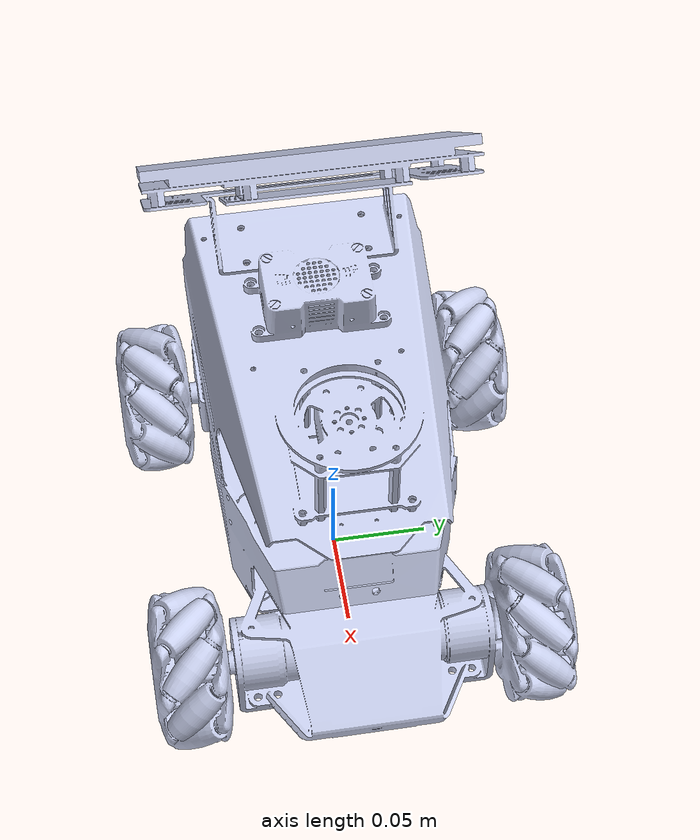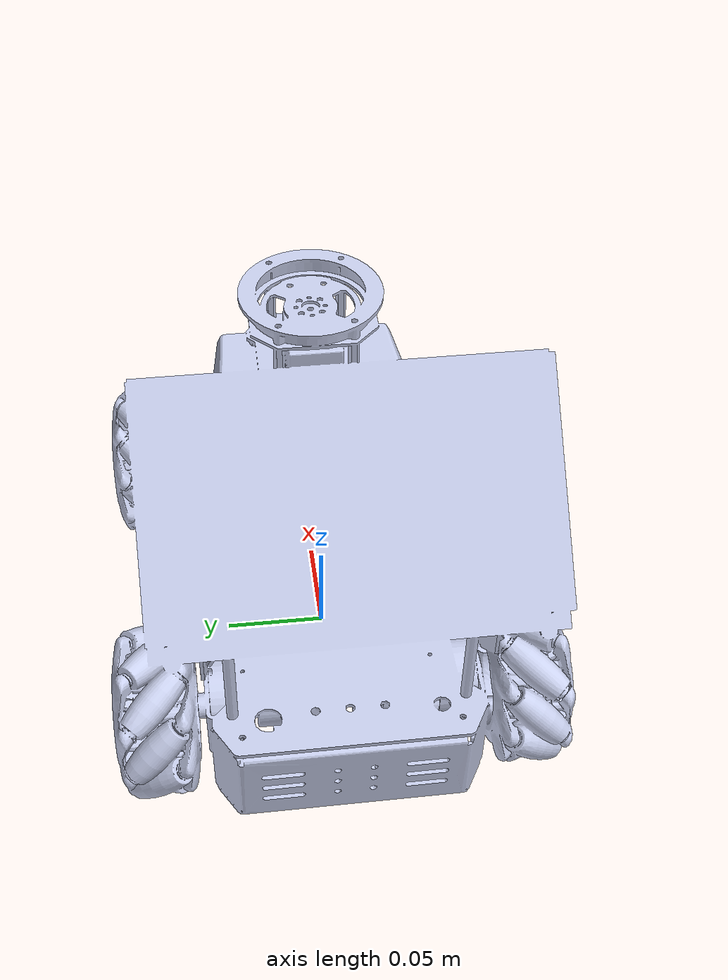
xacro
<?xml version="1.0" encoding="utf-8"?>
<robot name="car" xmlns:xacro="http://ros.org/wiki/xacro" >
  <xacro:arg name="prefix" default="" />
  <xacro:property name="M_PI"               value="3.1415926535897931"/>
  <xacro:property name="base_link_mass"     value="1.6" />
  <xacro:property name="base_link_w"        value="0.30"/>
  <xacro:property name="base_link_h"        value="0.15"/>
  <xacro:property name="base_link_d"        value="0.10"/>

  <link name="$(arg prefix)base_footprint"/>

  <joint name="base_joint" type="fixed">
    <parent link="$(arg prefix)base_footprint"/>
    <child link="$(arg prefix)base_link"/>
    <origin xyz="0.0 0.0 0.025" rpy="0 0 0"/>
  </joint>

  <link name="$(arg prefix)base_link">
    <inertial>
      <origin
        xyz="-0.0237400546330076 0.000105827287484879 0.066822140954233"
        rpy="0 0 0" />
      <mass
        value="0.808717142384399" />
      <inertia
        ixx="0.00081122049060922"
        ixy="-5.06387672227193E-07"
        ixz="-4.14284146512215E-05"
        iyy="0.000953001506912848"
        iyz="1.4848181298352E-07"
        izz="0.00147516785852103" />
    </inertial>

    <visual>
      <origin
        xyz="0 0 0"
        rpy="0 0 0" />
      <geometry>
        <mesh
          filename="package://rosorin_description/meshes/pro/mecanum/base_link.stl" />
      </geometry>
      <material name="">
        <color rgba="0.792156862745098 0.819607843137255 0.933333333333333 1" />
      </material>
    </visual>

    <collision>
      <origin
        xyz="0 0 0"
        rpy="0 0 0" />
      <geometry>
        <mesh
          filename="package://rosorin_description/meshes/pro/mecanum/base_link.stl" />
      </geometry>
    </collision>
  </link>
</robot>
